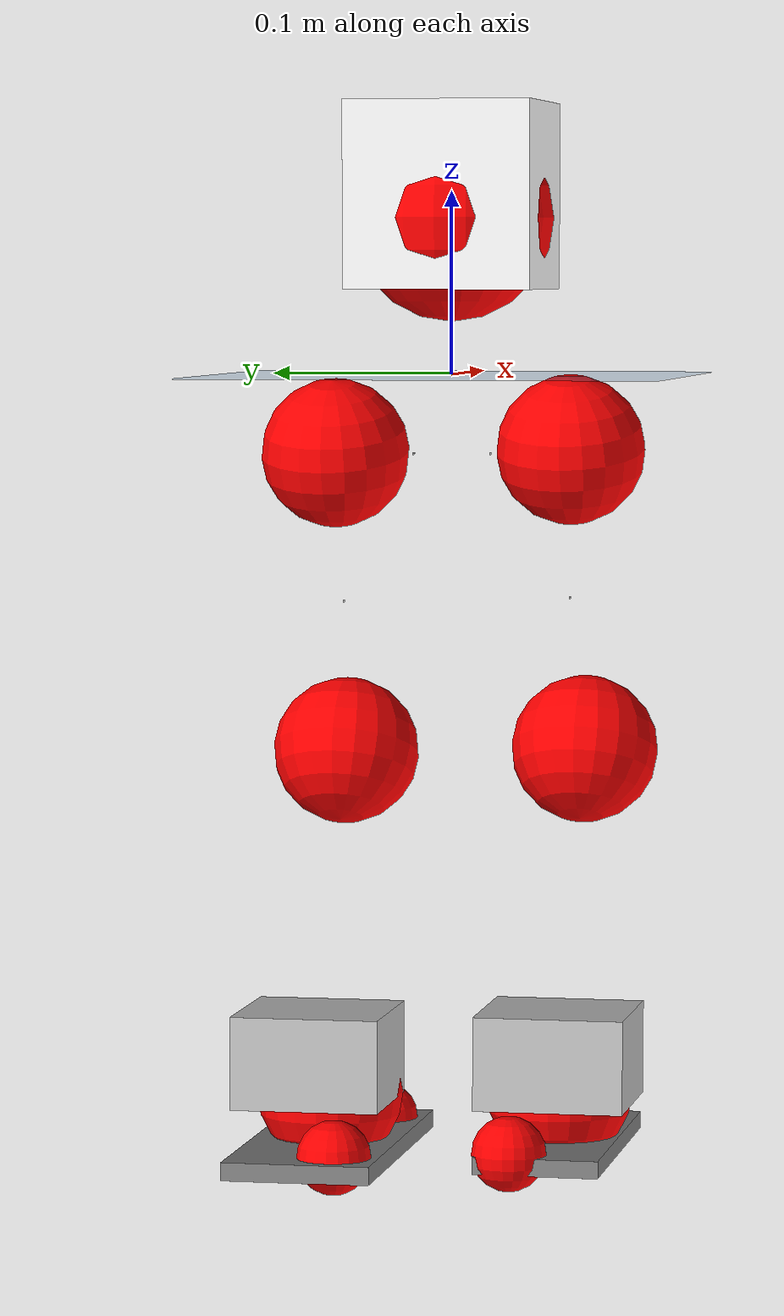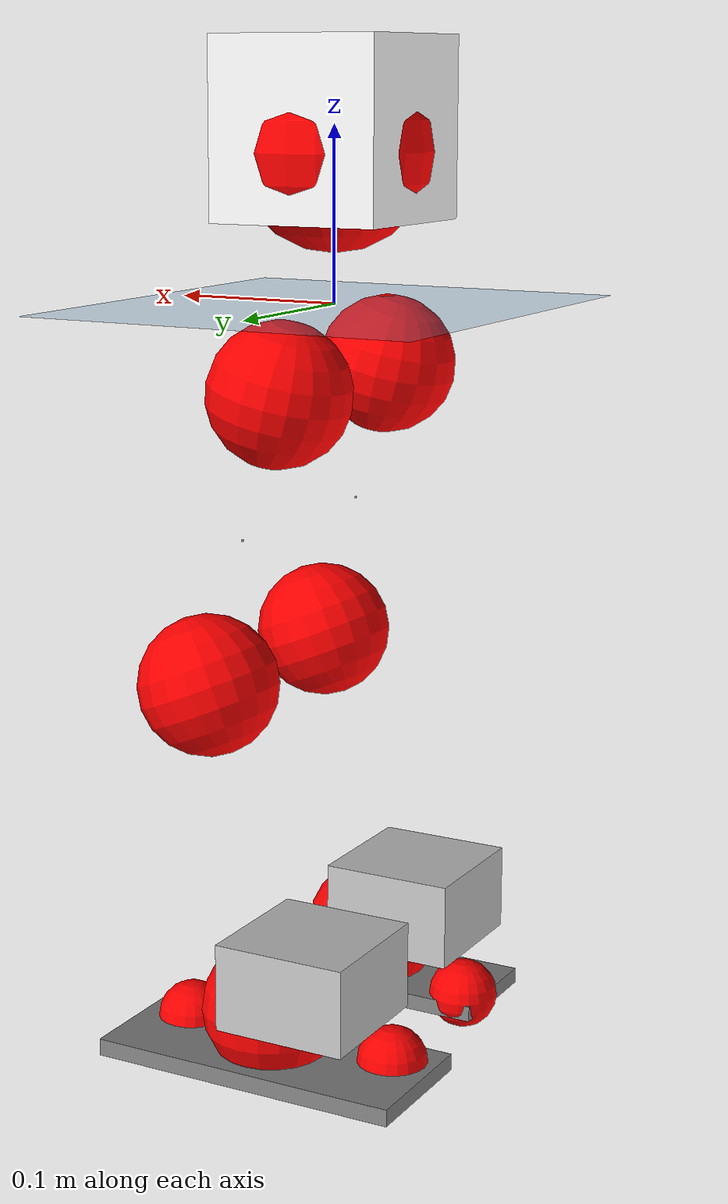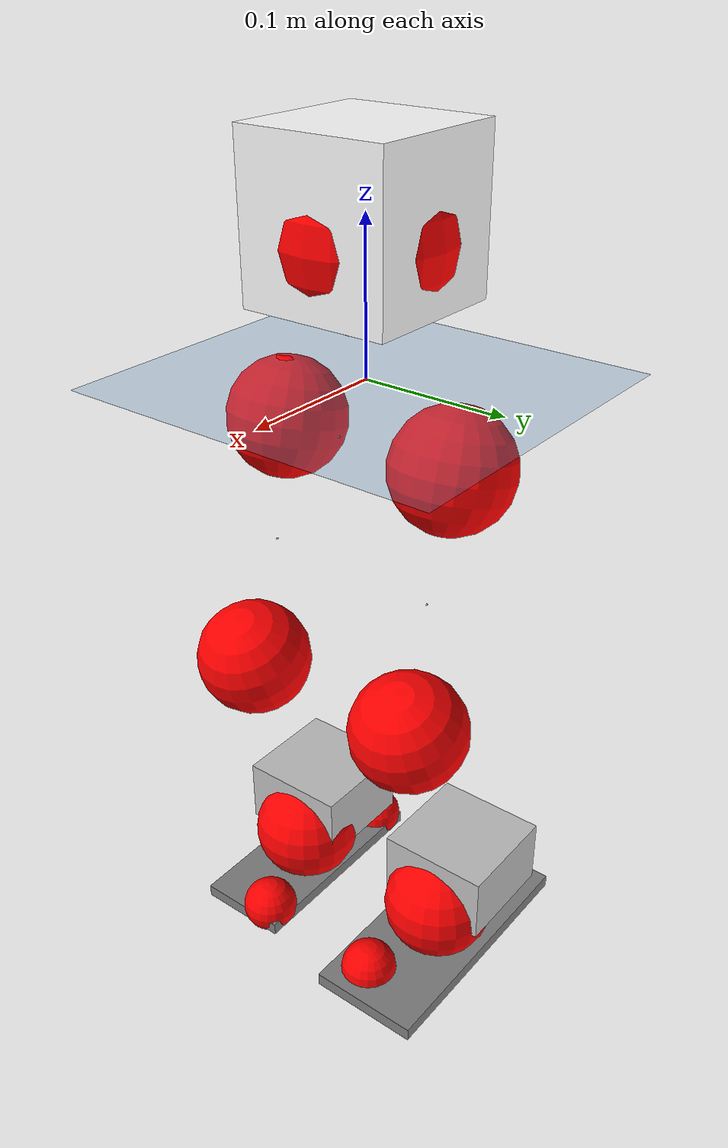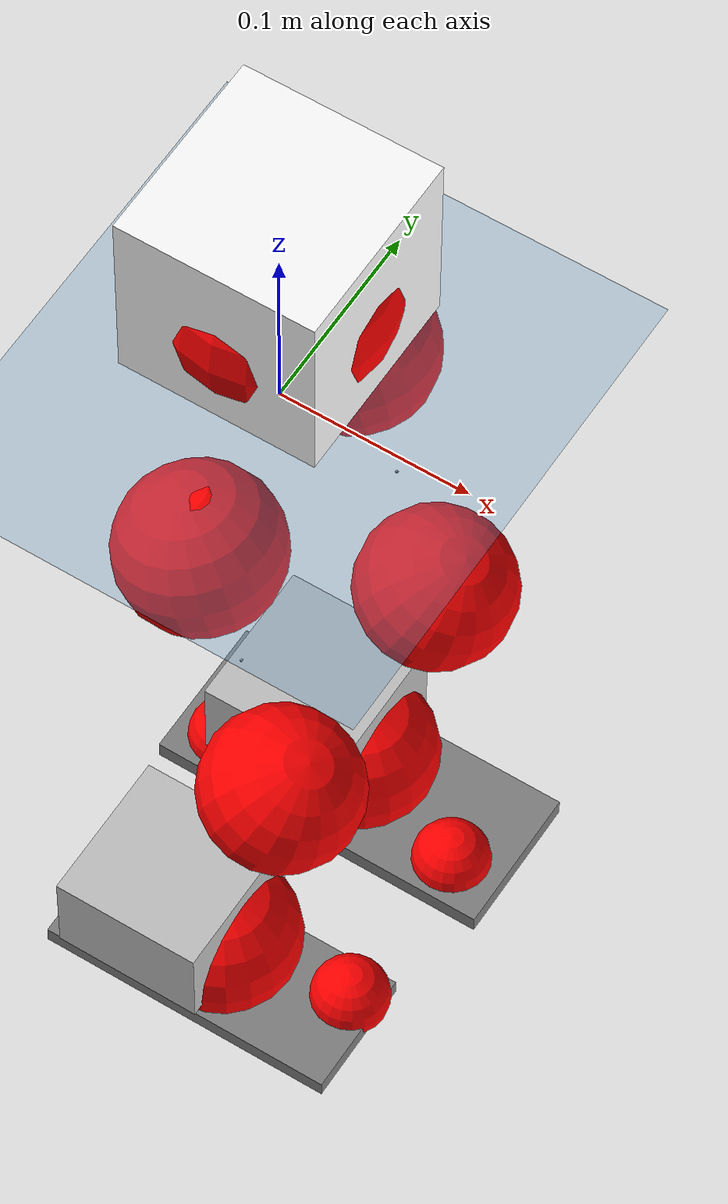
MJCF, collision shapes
<mujoco model="pi_12dof_release_v1">
  <compiler angle="radian" assetdir="assets" balanceinertia="true" inertiafromgeom="false"/>

  <option timestep="0.005" density="1.2" viscosity="2e-05"/>

  <size nkey="1"/>

  <visual>
    <quality shadowsize="8192"/>
    <map shadowclip="0.5"/>
  </visual>

  <default>
    <default class="/">
      <joint armature="0.01" damping="0.01" frictionloss="0.01"/>
      <geom contype="0" conaffinity="0" group="1" solref="-1000 -80"/>
      <site size="0.01 0.005 0.005" group="5"/>
      <general forcelimited="true" biastype="affine" gainprm="20" biasprm="0 -20 -0.5"/>
      <default class="foot">
        <geom size="0.0845 0.036 0.005" type="box" condim="6" group="4" priority="1" friction="0.9 0.2 0.2" solimp="0.015 1 0.005"/>
      </default>
      <default class="reward_collision_sphere">
        <geom group="5" rgba="1 0 0 1"/>
      </default>
    </default>
  </default>

  <asset>
    <texture type="skybox" colorspace="auto" name="//unnamed_texture_0" builtin="gradient" rgb1="0.95 0.95 0.95" rgb2="0.95 0.95 0.95" width="100" height="600"/>
    <texture type="2d" colorspace="auto" name="texplane" builtin="checker" rgb1="0.345 0.575 0.748" rgb2="0.345 0.575 0.748" markrgb="1 1 1" width="512" height="512"/>
    <material name="MatPlane" class="/" texture="texplane" texuniform="true" texrepeat="2 2" specular="0.9"/>
    <mesh name="baselink_1" class="/" file="baselink_1.STL"/>
    <mesh name="r_hip_pitch_link" class="/" file="r_hip_pitch_link.STL"/>
    <mesh name="r_hip_roll_link" class="/" file="r_hip_roll_link.STL"/>
    <mesh name="r_thigh_link" class="/" file="r_thigh_link.STL"/>
    <mesh name="r_calf_link" class="/" file="r_calf_link.STL"/>
    <mesh name="r_ankle_pitch_link" class="/" file="r_ankle_pitch_link.STL"/>
    <mesh name="r_ankle_roll_link" class="/" file="r_ankle_roll_link.STL"/>
    <mesh name="l_hip_pitch_link" class="/" file="l_hip_pitch_link.STL"/>
    <mesh name="l_hip_roll_link" class="/" file="l_hip_roll_link.STL"/>
    <mesh name="l_thigh_link" class="/" file="l_thigh_link.STL"/>
    <mesh name="l_calf_link" class="/" file="l_calf_link.STL"/>
    <mesh name="l_ankle_pitch_link" class="/" file="l_ankle_pitch_link.STL"/>
    <mesh name="l_ankle_roll_link" class="/" file="l_ankle_roll_link.STL"/>
  </asset>

  <worldbody>
    <geom name="floor" class="/" size="100 100 0.125" type="plane" group="0" material="MatPlane"/>
    <light name="toplight_shadow" class="/" pos="0 0 5" dir="0.0990148 0.0990148 -0.990148" type="directional" ambient="0.04 0.04 0.04" diffuse="0.55 0.55 0.55" specular="0.12 0.12 0.12"/>
    <light name="toplight_fill" class="/" pos="0 0 5" dir="0.0990148 0.0990148 -0.990148" type="directional" castshadow="false" ambient="0.04 0.04 0.04" diffuse="0.3 0.3 0.3" specular="0.08 0.08 0.08"/>
    <body name="trunk" pos="1.46322e-05 -9.02912e-05 -0.00276273" quat="1 0.000176383 0.000122509 0.000201987">
      <inertial pos="0.00122907 0.00147052 0.0531444" quat="0.695351 0.0100743 0.00948918 0.718537" mass="2.24884" diaginertia="0.00954846 0.00314418 0.0128149"/>
      <joint name="//unnamed_joint_0" type="free"/>
      <geom name="//unnamed_geom_1" class="/" type="mesh" density="0" rgba="1 1 1 1" mesh="baselink_1"/>
      <geom name="//unnamed_geom_2" class="/" size="0.0512062 0.0512062 0.0512062" pos="0 0 0.100648" type="box" rgba="1 1 1 1"/>
      <geom name="//unnamed_geom_3" class="reward_collision_sphere" size="0.0563268" pos="0 0 0.0880668"/>
      <site name="imu" class="/" pos="0.00853925 -0.0137289 0.00966624" size="0.0102412"/>
      <camera name="track" class="/" pos="0 -1.63512 0" quat="0.707107 0.707107 0 0" mode="trackcom"/>
      <camera name="ego_camera" class="/" pos="0.0747535 0 0.226458" quat="-0.5 -0.5 0.5 0.5"/>
      <body name="r_hip_pitch_link" pos="0.0011398 -0.0211946 -0.0405975" quat="0.992119 0.000142356 -0.125296 0.000121101">
        <inertial pos="-0.0012459 -0.0448172 -0.00272098" quat="-0.0188417 0.707131 -0.0259742 0.706354" mass="0.38724" diaginertia="0.000105453 3.40876e-05 0.000266892"/>
        <joint name="r_hip_pitch_joint" class="/" pos="0 0 0" axis="-0.000151909 -0.999992 -0.00405919" stiffness="0.0111981" range="-1.73512 1.19272" armature="0.00881324" damping="0.00167957" frictionloss="0.00888251"/>
        <geom name="//unnamed_geom_4" class="/" type="mesh" density="0" rgba="0.75294 0.75294 0.75294 1" mesh="r_hip_pitch_link"/>
        <geom name="//unnamed_geom_5" class="/" size="0.000512062 0.000512062 0.000512062" type="box" rgba="0.75294 0.75294 0.75294 1"/>
        <body name="r_hip_roll_link" pos="-0.000506189 -0.0448356 0.00269255" quat="1 -6.67708e-05 1.68788e-05 -0.00011219">
          <inertial pos="-0.00113135 0.00119336 -0.0796042" quat="0.708296 -0.0781183 -0.0802235 0.696978" mass="0.410854" diaginertia="0.00032683 0.000102292 0.000390288"/>
          <joint name="r_hip_roll_joint" class="/" pos="0 0 0" axis="-0.999932 -0.00608528 -0.0099296" range="-0.116882 0.517329" armature="0.0104316" damping="0.0220345" frictionloss="0.011666"/>
          <geom name="//unnamed_geom_6" class="/" type="mesh" density="0" rgba="0.75294 0.75294 0.75294 1" mesh="r_hip_roll_link"/>
          <geom name="//unnamed_geom_7" class="/" size="0.000512062 0.000512062 0.000512062" type="box" rgba="0.75294 0.75294 0.75294 1"/>
          <geom name="//unnamed_geom_8" class="reward_collision_sphere" size="0.0409649"/>
          <body name="r_thigh_link" pos="-0.00193379 0.00320456 -0.084692" quat="1 9.71464e-05 -0.000213535 -0.000847806">
            <inertial pos="0.00019948 0.000752763 -0.0592516" quat="0.73726 0.675609 9.7773e-05 -5.78294e-05" mass="0.114286" diaginertia="0.00012269 3.44551e-05 0.000174173"/>
            <joint name="r_thigh_joint" class="/" pos="0 0 0" axis="0.00281932 -0.00409697 -0.999988" range="-0.302104 0.543066" armature="0.0114196" damping="0.00718367" frictionloss="0.0102557"/>
            <geom name="//unnamed_geom_9" class="/" type="mesh" density="0" rgba="0.75294 0.75294 0.75294 1" mesh="r_thigh_link"/>
            <geom name="//unnamed_geom_10" class="/" size="0.000512062 0.000512062 0.000512062" type="box" rgba="0.75294 0.75294 0.75294 1"/>
            <body name="r_calf_link" pos="0.00238277 -0.0045323 -0.0894077" quat="0.947598 0.000902087 0.319462 0.000800191">
              <inertial pos="0.000541422 -0.000536693 -0.0877946" quat="0.999991 -0.00128987 -0.00117867 0.00374423" mass="0.867348" diaginertia="0.00342525 0.00120749 0.000549456"/>
              <joint name="r_calf_joint" class="/" pos="0 0 0" axis="-0.00576868 -0.999977 -0.00356849" stiffness="0.00975886" range="-1.69682 0.649729" armature="0.0100436" damping="0.00694473" frictionloss="0.00966566"/>
              <geom name="//unnamed_geom_11" class="/" type="mesh" density="0" rgba="0.75294 0.75294 0.75294 1" mesh="r_calf_link"/>
              <geom name="//unnamed_geom_12" class="/" size="0.000512062 0.000512062 0.000512062" type="box" rgba="0.75294 0.75294 0.75294 1"/>
              <geom name="//unnamed_geom_13" class="reward_collision_sphere" size="0.0409649"/>
              <body name="r_ankle_pitch_link" pos="0.00101863 0.00313126 -0.175816" quat="0.980143 -0.000374119 -0.19829 0.000293434">
                <inertial pos="0.00519105 0.00349414 -0.000180624" quat="0.00478128 0.706822 -0.00256079 0.70737" mass="0.18442" diaginertia="0.000299009 7.93564e-05 0.00038103"/>
                <joint name="r_ankle_pitch_joint" class="/" pos="0 0 0" axis="0.0105867 -0.999942 -0.00216897" range="-1.35357 0.548205" armature="0.0101582" damping="0.0183402" frictionloss="0.0113903"/>
                <geom name="//unnamed_geom_14" class="/" type="mesh" density="0" rgba="0.75294 0.75294 0.75294 1" mesh="r_ankle_pitch_link"/>
                <geom name="//unnamed_geom_15" class="/" size="0.0399408 0.0409649 0.0256031" type="box" rgba="0.75294 0.75294 0.75294 1"/>
                <body name="r_ankle_roll_link" pos="0.0765665 0.00393063 0.00267503" quat="1 -5.68514e-05 3.02758e-05 -0.00010556">
                  <inertial pos="-0.0257995 -0.000368313 -0.017179" quat="0.557379 0.435629 0.432218 0.559235" mass="0.558379" diaginertia="0.00115982 0.000381236 0.000903074"/>
                  <joint name="r_ankle_roll_joint" class="/" pos="0 0 0" axis="-0.999999 0.00103288 -0.000322667" range="-0.166307 0.157359" armature="0.0103583" damping="0.00933751" frictionloss="0.0106298"/>
                  <geom name="//unnamed_geom_16" class="/" type="mesh" density="0" rgba="0.75294 0.75294 0.75294 1" mesh="r_ankle_roll_link"/>
                  <geom name="//unnamed_geom_17" class="/" type="mesh" rgba="0.75294 0.75294 0.75294 1" mesh="r_ankle_roll_link"/>
                  <geom name="right_foot" class="foot" size="0.0811603 0.0341867 0.00471094" pos="-0.0508324 0 -0.0553563"/>
                  <geom name="//unnamed_geom_19" class="reward_collision_sphere" size="0.0409649" pos="-0.0498357 0 -0.0251619"/>
                  <geom name="//unnamed_geom_20" class="reward_collision_sphere" size="0.0204825" pos="0.0149507 0.0163512 -0.0503239"/>
                  <geom name="//unnamed_geom_21" class="reward_collision_sphere" size="0.0204825" pos="-0.119606 0.0163512 -0.0503239"/>
                  <site name="right_foot" class="foot" pos="-0.0508324 0 -0.0553563" size="0.0102412"/>
                </body>
              </body>
            </body>
          </body>
        </body>
      </body>
      <body name="l_hip_pitch_link" pos="-0.00185932 0.0211577 -0.0408423" quat="0.992192 -3.02554e-05 -0.124723 -6.62307e-05">
        <inertial pos="-0.00168711 0.0419215 -9.35139e-05" quat="-0.0382792 0.705723 0.0287781 0.706867" mass="0.415842" diaginertia="0.000128625 3.96777e-05 0.000307469"/>
        <joint name="l_hip_pitch_joint" class="/" pos="0 0 0" axis="-0.00546207 0.999985 0.00103848" range="-1.19905 1.71627" armature="0.0117652" damping="0.0252988" frictionloss="0.00905505"/>
        <geom name="//unnamed_geom_22" class="/" type="mesh" density="0" rgba="0.75294 0.75294 0.75294 1" mesh="l_hip_pitch_link"/>
        <geom name="//unnamed_geom_23" class="/" size="0.000512062 0.000512062 0.000512062" type="box" rgba="0.75294 0.75294 0.75294 1"/>
        <body name="l_hip_roll_link" pos="0.000424414 0.0440178 8.25089e-05" quat="0.999999 0.000443909 0.00108917 0.00048555">
          <inertial pos="-0.00178576 -0.00290627 -0.0774379" quat="0.696657 -0.0793211 -0.0695208 0.709608" mass="0.412514" diaginertia="0.000334938 9.9817e-05 0.000426288"/>
          <joint name="l_hip_roll_joint" class="/" pos="0 0 0" axis="-0.999951 0.00610737 -0.00784125" range="-0.489005 0.0885769" armature="0.0106033" damping="0.0120615" frictionloss="0.0097397"/>
          <geom name="//unnamed_geom_24" class="/" type="mesh" density="0" rgba="0.75294 0.75294 0.75294 1" mesh="l_hip_roll_link"/>
          <geom name="//unnamed_geom_25" class="/" size="0.000512062 0.000512062 0.000512062" type="box" rgba="0.75294 0.75294 0.75294 1"/>
          <geom name="//unnamed_geom_26" class="reward_collision_sphere" size="0.0409649"/>
          <body name="l_thigh_link" pos="0.00258138 0.000134285 -0.0868115" quat="0.999999 -0.000360909 -0.000502761 -0.00106489">
            <inertial pos="0.00265519 -0.00332577 -0.0623982" quat="0.675493 0.737366 0.000181075 0.000318648" mass="0.118297" diaginertia="0.000121025 3.5409e-05 0.000183407"/>
            <joint name="l_thigh_joint" class="/" pos="0 0 0" axis="-0.00273325 0.000601865 -0.999996" range="-0.58313 0.256082" armature="0.00912233" damping="0.0196042" frictionloss="0.00882755"/>
            <geom name="//unnamed_geom_27" class="/" type="mesh" density="0" rgba="0.75294 0.75294 0.75294 1" mesh="l_thigh_link"/>
            <geom name="//unnamed_geom_28" class="/" size="0.000512062 0.000512062 0.000512062" type="box" rgba="0.75294 0.75294 0.75294 1"/>
            <body name="l_calf_link" pos="-0.000294196 0.00311864 -0.0883654" quat="0.947689 -0.000300768 0.319194 0.00110372">
              <inertial pos="0.000126289 0.00502914 -0.0906166" quat="0.999977 0.0058154 -0.000813784 0.00348586" mass="0.832864" diaginertia="0.00345939 0.00119296 0.000532508"/>
              <joint name="l_calf_joint" class="/" pos="0 0 0" axis="0.00552252 0.999984 0.00112979" stiffness="0.0110546" range="-0.639925 1.60147" armature="0.0103113" damping="0.011427" frictionloss="0.00878851"/>
              <geom name="//unnamed_geom_29" class="/" type="mesh" density="0" rgba="0.75294 0.75294 0.75294 1" mesh="l_calf_link"/>
              <geom name="//unnamed_geom_30" class="/" size="0.000512062 0.000512062 0.000512062" type="box" rgba="0.75294 0.75294 0.75294 1"/>
              <geom name="//unnamed_geom_31" class="reward_collision_sphere" size="0.0409649"/>
              <body name="l_ankle_pitch_link" pos="-0.000235576 0.00213917 -0.176565" quat="0.98012 9.06587e-05 -0.198406 0.000159883">
                <inertial pos="0.00508716 -0.000337044 0.00272013" quat="-0.00101479 0.714685 0.00876589 0.699391" mass="0.187101" diaginertia="0.000304587 8.08696e-05 0.000380167"/>
                <joint name="l_ankle_pitch_joint" class="/" pos="0 0 0" axis="0.00573038 0.999967 0.00573505" stiffness="0.00325281" range="-0.500734 1.30524" armature="0.0101641" damping="0.00362396" frictionloss="0.00998807"/>
                <geom name="//unnamed_geom_32" class="/" type="mesh" density="0" rgba="0.75294 0.75294 0.75294 1" mesh="l_ankle_pitch_link"/>
                <geom name="//unnamed_geom_33" class="/" size="0.0399408 0.0409649 0.0256031" type="box" rgba="0.75294 0.75294 0.75294 1"/>
                <body name="l_ankle_roll_link" pos="0.0773602 -0.00142357 0.000828899" quat="0.999999 0.000197941 0.000257963 -0.00129367">
                  <inertial pos="-0.0221591 0.000513417 -0.0185546" quat="0.557879 0.43025 0.431137 0.563717" mass="0.526755" diaginertia="0.00107622 0.000358299 0.000867887"/>
                  <joint name="l_ankle_roll_joint" class="/" pos="0 0 0" axis="-0.999998 0.00139089 0.00166009" range="-0.162391 0.147066" armature="0.0101336" damping="0.00656237" frictionloss="0.00995291"/>
                  <geom name="//unnamed_geom_34" class="/" type="mesh" density="0" rgba="0.75294 0.75294 0.75294 1" mesh="l_ankle_roll_link"/>
                  <geom name="//unnamed_geom_35" class="/" type="mesh" rgba="0.75294 0.75294 0.75294 1" mesh="l_ankle_roll_link"/>
                  <geom name="left_foot" class="foot" size="0.0945604 0.040732 0.00500474" pos="-0.0508324 0 -0.0553563"/>
                  <geom name="//unnamed_geom_37" class="reward_collision_sphere" size="0.0409649" pos="-0.0498357 0 -0.0251619"/>
                  <geom name="//unnamed_geom_38" class="reward_collision_sphere" size="0.0204825" pos="0.0149507 -0.0163512 -0.0503239"/>
                  <geom name="//unnamed_geom_39" class="reward_collision_sphere" size="0.0204825" pos="-0.119606 -0.0163512 -0.0503239"/>
                  <site name="left_foot" class="foot" pos="-0.0508324 0 -0.0553563" size="0.0102412"/>
                </body>
              </body>
            </body>
          </body>
        </body>
      </body>
    </body>
  </worldbody>

  <contact>
    <pair class="/" geom1="floor" geom2="right_foot" name="//unnamed_contact_1"/>
    <pair class="/" geom1="floor" geom2="left_foot" name="//unnamed_contact_0"/>
  </contact>

  <actuator>
    <general name="r_hip_pitch_joint" class="/" joint="r_hip_pitch_joint" forcerange="-19.3295 19.3295" gainprm="19.4482" biasprm="0 -19.4482 -0.526118"/>
    <general name="r_hip_roll_joint" class="/" joint="r_hip_roll_joint" forcerange="-21.3977 21.3977" gainprm="19.4482" biasprm="0 -19.4482 -0.526118"/>
    <general name="r_thigh_joint" class="/" joint="r_thigh_joint" forcerange="-19.2788 19.2788" gainprm="19.4482" biasprm="0 -19.4482 -0.526118"/>
    <general name="r_calf_joint" class="/" joint="r_calf_joint" forcerange="-22.7862 22.7862" gainprm="19.4482" biasprm="0 -19.4482 -0.526118"/>
    <general name="r_ankle_pitch_joint" class="/" joint="r_ankle_pitch_joint" forcerange="-23.7883 23.7883" gainprm="19.4482" biasprm="0 -19.4482 -0.526118"/>
    <general name="r_ankle_roll_joint" class="/" joint="r_ankle_roll_joint" forcerange="-22.9688 22.9688" gainprm="19.4482" biasprm="0 -19.4482 -0.526118"/>
    <general name="l_hip_pitch_joint" class="/" joint="l_hip_pitch_joint" forcerange="-19.303 19.303" gainprm="19.4482" biasprm="0 -19.4482 -0.526118"/>
    <general name="l_hip_roll_joint" class="/" joint="l_hip_roll_joint" forcerange="-20.9892 20.9892" gainprm="19.4482" biasprm="0 -19.4482 -0.526118"/>
    <general name="l_thigh_joint" class="/" joint="l_thigh_joint" forcerange="-22.1467 22.1467" gainprm="19.4482" biasprm="0 -19.4482 -0.526118"/>
    <general name="l_calf_joint" class="/" joint="l_calf_joint" forcerange="-20.4792 20.4792" gainprm="19.4482" biasprm="0 -19.4482 -0.526118"/>
    <general name="l_ankle_pitch_joint" class="/" joint="l_ankle_pitch_joint" forcerange="-22.8288 22.8288" gainprm="19.4482" biasprm="0 -19.4482 -0.526118"/>
    <general name="l_ankle_roll_joint" class="/" joint="l_ankle_roll_joint" forcerange="-19.5043 19.5043" gainprm="19.4482" biasprm="0 -19.4482 -0.526118"/>
  </actuator>

  <sensor>
    <gyro site="imu" name="imu_angular_velocity"/>
    <velocimeter site="imu" name="imu_linear_velocity"/>
    <framelinvel objtype="site" objname="left_foot" name="left_foot_global_linear_velocity"/>
    <framelinvel objtype="site" objname="right_foot" name="right_foot_global_linear_velocity"/>
  </sensor>

  <keyframe>
    <key name="home" qpos="0 0 0.291 1 0 0 0 0.4 0 0 -0.8 0.4 0 -0.4 0 0 0.8 -0.4 0"/>
  </keyframe>
</mujoco>
